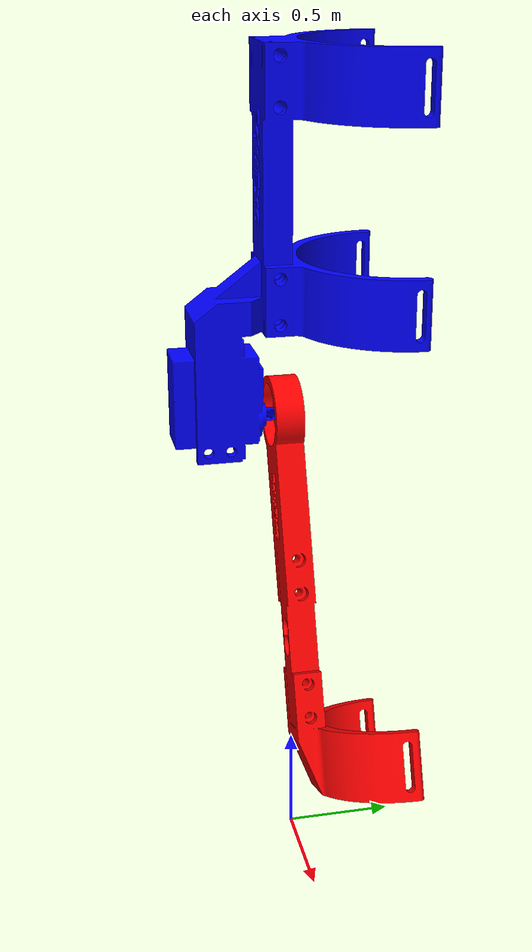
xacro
<?xml version="1.0"?>
<robot name="eduexo" xmlns:xacro="http://www.ros.org/wiki/xacro">

  <!-- Import all Gazebo-customization elements, including Gazebo colors -->
  <xacro:include filename="$(find wearable_robot_description)/urdf/eduexo.gazebo"/>
  <!-- Import Rviz colors -->
  <xacro:include filename="$(find wearable_robot_description)/urdf/materials.xacro"/>

    <link name="world"/>

    <joint name="fixed" type="fixed">
        <parent link="world"/>
        <child link="base_link"/>
    </joint>

    <link name="base_link">
        <visual>
            <geometry>
                <mesh filename="$(find wearable_robot_description)/meshes/eduexo_base_link.dae" scale="0.01 0.01 0.01"/>
            </geometry>
            <origin rpy="0 0 0" xyz="0 0 0.6"/>
            <material name="blue">
                <color rgba="0 0 1 1"/>
            </material>
        </visual>
        <collision>
            <geometry>
                <cylinder length="0.4" radius="0.06"/>
            </geometry>
            <origin rpy="0 0 0" xyz="0 0 0.6"/>
        </collision>

        <inertial>
            <mass value="1"/>
            <inertia ixx="1.0" ixy="0.0" ixz="0.0" iyy="1.0" iyz="0.0" izz="1.0"/>
        </inertial>
    </link>

    <joint name="arm_joint" type="revolute">
        <parent link="base_link"/>
        <child link="arm_link"/>
        <origin xyz="0 0 2.2"/>
        <axis xyz="0 1 0" />
        <limit effort="300" velocity="0.1" lower="6" upper="2.7"/>
        <dynamics damping="50" friction="1"/>
    </joint>

    <link name="arm_link">
        <visual>
            <geometry>
                <mesh filename="$(find wearable_robot_description)/meshes/eduexo_arm_link.dae" scale="0.01 0.01 0.01"/>
            </geometry>
            <origin rpy="0 -1.570796 0" xyz="0.0 0 0"/>
            <material name="red">
                <color rgba="1 0 0 1"/>
            </material>
        </visual>
        <collision>
            <geometry>
                <cylinder length="0.4" radius="0.06"/>
            </geometry>
            <origin rpy="0 1.570796 0" xyz="-0.16 0 0"/>
        </collision>

        <inertial>
            <mass value="1"/>
            <inertia ixx="1.0" ixy="0.0" ixz="0.0" iyy="1.0" iyz="0.0" izz="1.0"/>
        </inertial>
    </link>

  <ros2_control name="GazeboSystem" type="system">
    <hardware>
      <plugin>gazebo_ros2_control/GazeboSystem</plugin>
    </hardware>
    <joint name="arm_joint">
      <command_interface name="position">
        <param name="min">1.79</param>
        <param name="max">6.28</param>
      </command_interface>
      <state_interface name="position"/>
      <state_interface name="velocity"/>
      <state_interface name="effort"/>
    </joint>
  </ros2_control>
</robot>
